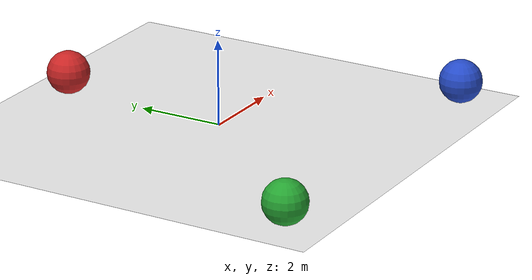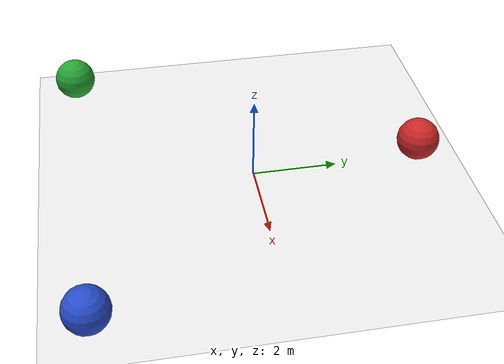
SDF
<?xml version="1.0" ?>
<sdf version="1.4">
  <!-- We use a custom world for the rrbot so that the camera angle is launched correctly -->

  <world name="twowheel_world">

    <include>
      <uri>model://my_ground_plane</uri>
      <pose>0 0 0 0.0 0.0 0.0</pose>
    </include>

    <!-- Global light source -->
    <include>
      <uri>model://sun</uri>
    </include>

    <model name='red_ball'>
      <pose>0 4 0.5 0 -0 0</pose>
      <link name='link'>
        <inertial>
          <mass>1</mass>
          <inertia>
            <ixx>0.1</ixx>
            <ixy>0</ixy>
            <ixz>0</ixz>
            <iyy>0.1</iyy>
            <iyz>0</iyz>
            <izz>0.1</izz>
          </inertia>
          <pose>0 0 0 0 -0 0</pose>
        </inertial>
        <collision name='collision'>
          <geometry>
            <sphere>
              <radius>0.5</radius>
            </sphere>
          </geometry>
          <max_contacts>10</max_contacts>
          <surface>
            <contact>
              <ode/>
            </contact>
            <bounce/>
            <friction>
              <torsional>
                <ode/>
              </torsional>
              <ode/>
            </friction>
          </surface>
        </collision>
        <visual name='visual'>
          <geometry>
            <sphere>
              <radius>0.5</radius>
            </sphere>
          </geometry>
          <material>
            <script>
              <name>Gazebo/Red</name>
              <uri>file://media/materials/scripts/gazebo.material</uri>
            </script>
          </material>
        </visual>
        <self_collide>0</self_collide>
        <enable_wind>0</enable_wind>
        <kinematic>0</kinematic>
      </link>
    </model>

    <model name='green_ball'>
      <pose>-4 -4 0.5 0 -0 0</pose>
      <link name='link'>
        <inertial>
          <mass>1</mass>
          <inertia>
            <ixx>0.1</ixx>
            <ixy>0</ixy>
            <ixz>0</ixz>
            <iyy>0.1</iyy>
            <iyz>0</iyz>
            <izz>0.1</izz>
          </inertia>
          <pose>0 0 0 0 -0 0</pose>
        </inertial>
        <collision name='collision'>
          <geometry>
            <sphere>
              <radius>0.5</radius>
            </sphere>
          </geometry>
          <max_contacts>10</max_contacts>
          <surface>
            <contact>
              <ode/>
            </contact>
            <bounce/>
            <friction>
              <torsional>
                <ode/>
              </torsional>
              <ode/>
            </friction>
          </surface>
        </collision>
        <visual name='visual'>
          <geometry>
            <sphere>
              <radius>0.5</radius>
            </sphere>
          </geometry>
          <material>
            <script>
              <name>Gazebo/Green</name>
              <uri>file://media/materials/scripts/gazebo.material</uri>
            </script>
          </material>
        </visual>
        <self_collide>0</self_collide>
        <enable_wind>0</enable_wind>
        <kinematic>0</kinematic>
      </link>
    </model>

    <model name='blue_ball'>
      <pose>4 -4 0.5 0 -0 0</pose>
      <link name='link'>
        <inertial>
          <mass>1</mass>
          <inertia>
            <ixx>0.1</ixx>
            <ixy>0</ixy>
            <ixz>0</ixz>
            <iyy>0.1</iyy>
            <iyz>0</iyz>
            <izz>0.1</izz>
          </inertia>
          <pose>0 0 0 0 -0 0</pose>
        </inertial>
        <collision name='collision'>
          <geometry>
            <sphere>
              <radius>0.5</radius>
            </sphere>
          </geometry>
          <max_contacts>10</max_contacts>
          <surface>
            <contact>
              <ode/>
            </contact>
            <bounce/>
            <friction>
              <torsional>
                <ode/>
              </torsional>
              <ode/>
            </friction>
          </surface>
        </collision>
        <visual name='visual'>
          <geometry>
            <sphere>
              <radius>0.5</radius>
            </sphere>
          </geometry>
          <material>
            <script>
              <name>Gazebo/Blue</name>
              <uri>file://media/materials/scripts/gazebo.material</uri>
            </script>
          </material>
        </visual>
        <self_collide>0</self_collide>
        <enable_wind>0</enable_wind>
        <kinematic>0</kinematic>
      </link>
    </model>

  </world>
</sdf>

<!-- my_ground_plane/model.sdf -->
<sdf version="1.5">
  <model name="ground_plane">
    <static>true</static>
    <link name="link">
      <collision name="collision">
        <geometry>
          <plane>
            <normal>0 0 1</normal>
            <size>10 10</size>
          </plane>
        </geometry>
        <surface>
          <contact>
             <collide_bitmask>0xffff</collide_bitmask>
          </contact>
          <friction>
            <ode>
              <mu>100</mu>
              <mu2>50</mu2>
            </ode>
          </friction>
        </surface>
      </collision>
      <visual name="visual">
        <cast_shadows>false</cast_shadows>
        <geometry>
          <plane>
            <normal>0 0 1</normal>
            <size>10 10</size>
          </plane>
        </geometry>
        <material>
          <script>
            <uri>file://media/materials/scripts/gazebo.material</uri>
            <name>Gazebo/White</name>
          </script>
        </material>
      </visual>
    </link>
  </model>
</sdf>
